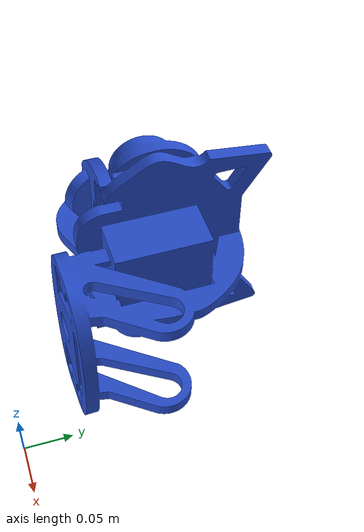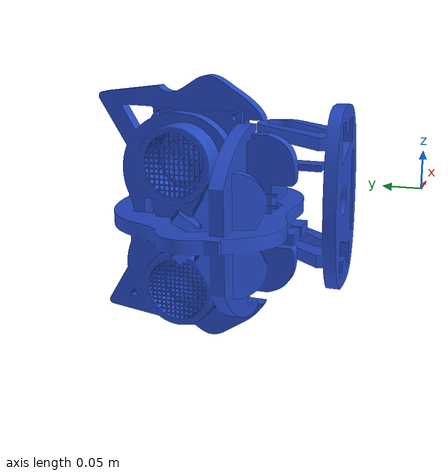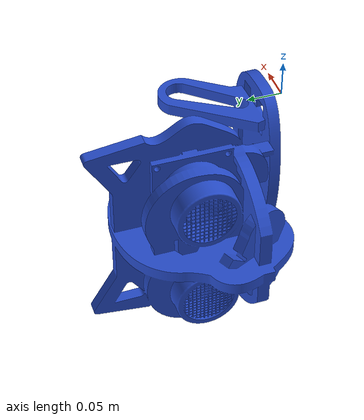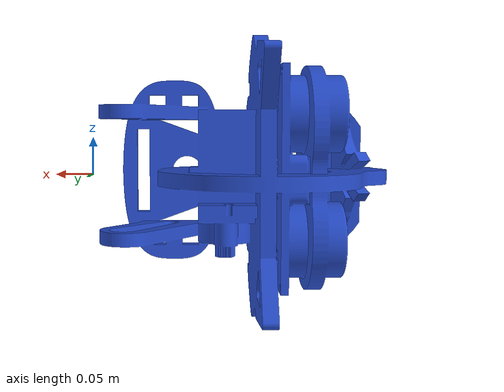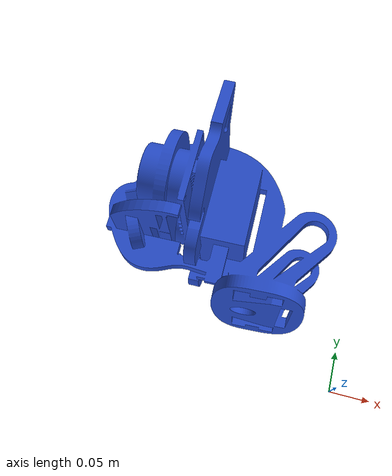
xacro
<?xml version="1.0"?>

<robot name="billi" xmlns:xacro="http://www.ros.org/wiki/xacro">

<!--HEAD LINK -->
<link name="head">
	<visual>
		<origin rpy="0 0 0.1" xyz="0 -0.11 0"/>
      		<geometry>
        		<mesh filename="package://billi_sim/models/meshes/head.stl" scale ="5 5 5"/>
      		</geometry>
      		<material name="blue"/>
    	</visual>
   	<collision>
		<origin rpy="0 0 0.1" xyz="0 -0.11 0"/>
      		<geometry>
        		<mesh filename="package://billi_sim/models/meshes/head.stl" scale ="5 5 5"/>
      		</geometry>
    	</collision>
	<inertial>
		  <mass value="1.5"/>
		  <origin rpy="0 0 0.1" xyz="0 0 0.1"/>
		  <inertia ixx="0.0395416666667" ixy="0" ixz="0" iyy="0.106208333333" iyz="0" izz="0.106208333333"/>
	</inertial>
</link>
<gazebo reference="head">
        <kp>1000.0</kp>
        <kd>1000.0</kd>
        <mu1>10.0</mu1>
        <mu2>10.0</mu2>
        <material>Gazebo/blue</material>
    </gazebo>

</robot>
